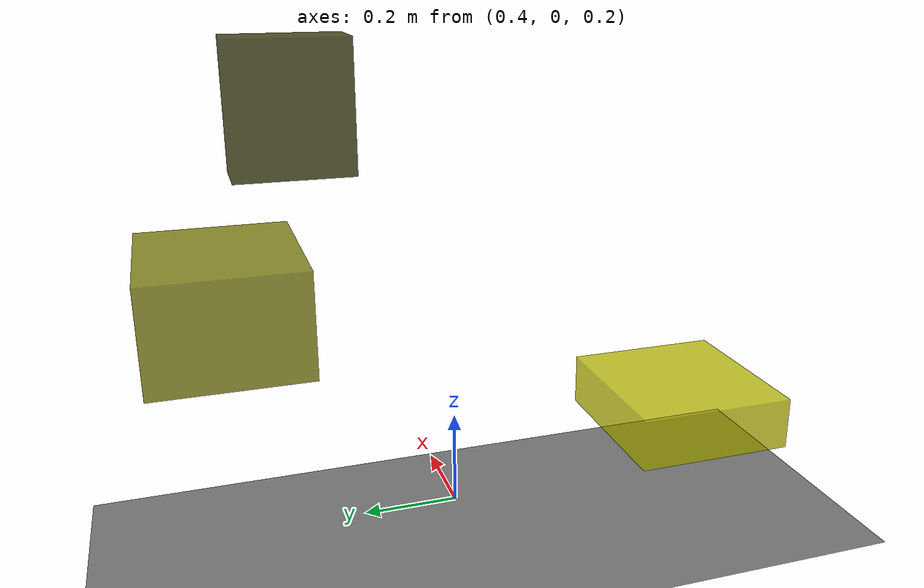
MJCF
<?xml version="1.0"?>
<mujoco model="obstacle_scene">
  <compiler angle="radian" coordinate="local"/>
  <option timestep="0.001" gravity="0 0 -9.81"/>

  <asset>
    <material name="obstacle_mat" rgba="0.8 0.8 0.0 0.8"/>
    <material name="ground_mat" rgba="0.5 0.5 0.5 1"/>
  </asset>

  <worldbody>
    <!-- Ground plane -->
    <geom name="ground" type="plane" size="3 3 0.1" material="ground_mat"/>

    <!-- Obstacles -->
    <body name="obstacle_0" pos="0.520670 0.297478 1.056140">
      <geom name="obs_0" type="box" size="0.061623 0.121289 0.134714" rgba="0.2 0.2 0.0 0.8"/>
    </body>
    <body name="obstacle_1" pos="0.586806 0.451917 0.641080">
      <geom name="obs_1" type="box" size="0.195190 0.167526 0.115862" rgba="0.5 0.5 0.0 0.8"/>
    </body>
    <body name="obstacle_2" pos="0.589699 -0.648929 0.256220">
      <geom name="obs_2" type="box" size="0.200782 0.192392 0.063515" rgba="0.8 0.8 0.0 0.8"/>
    </body>
  </worldbody>
</mujoco>
